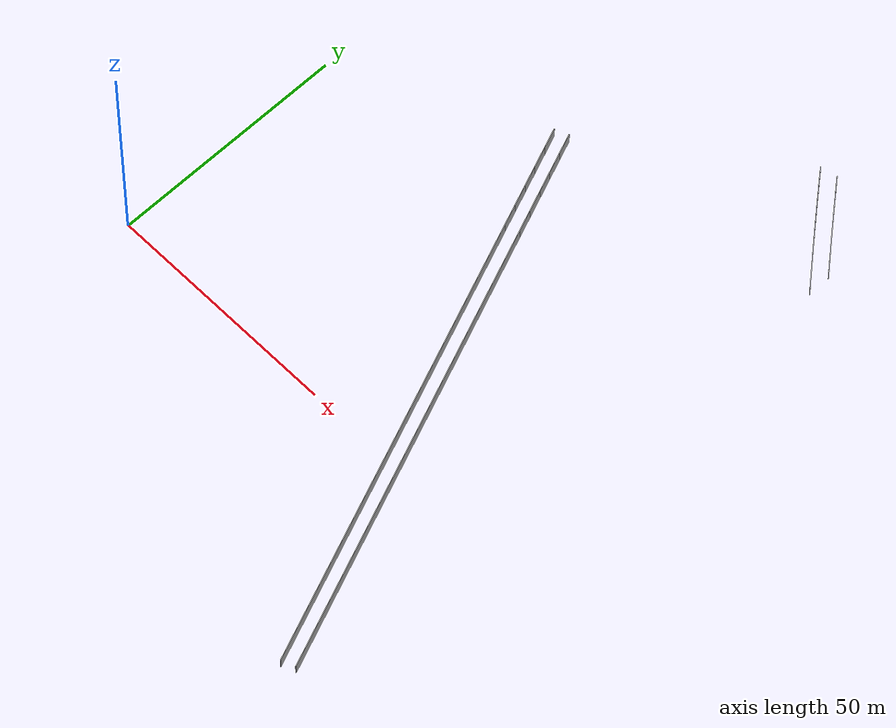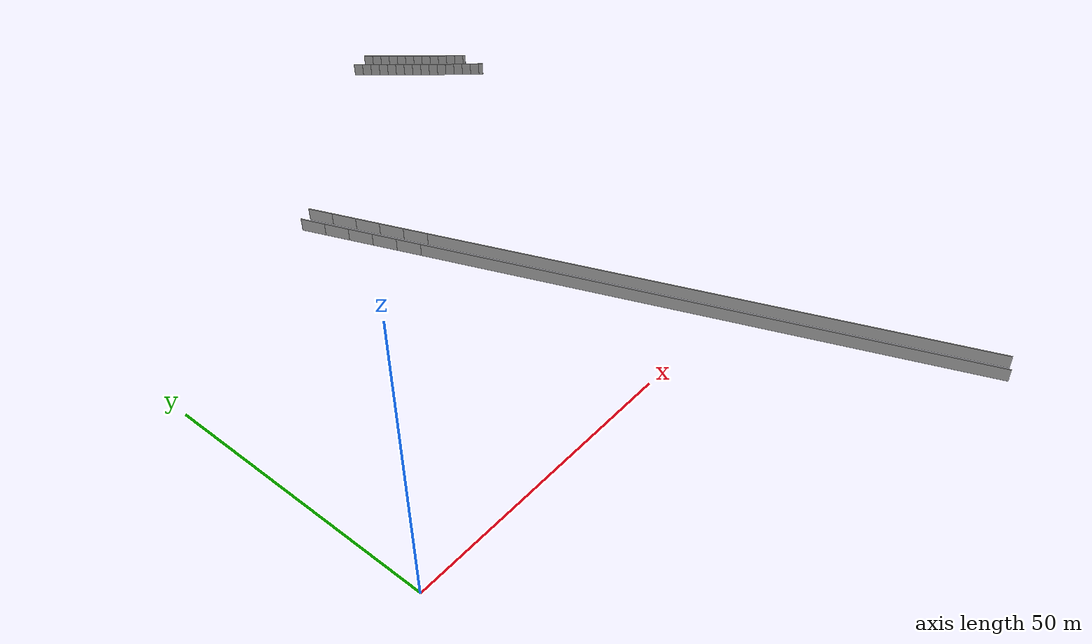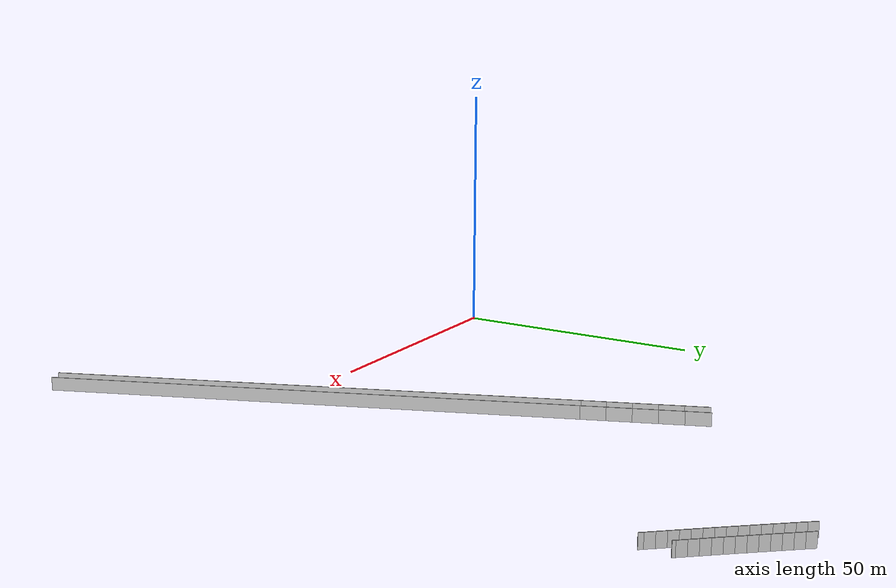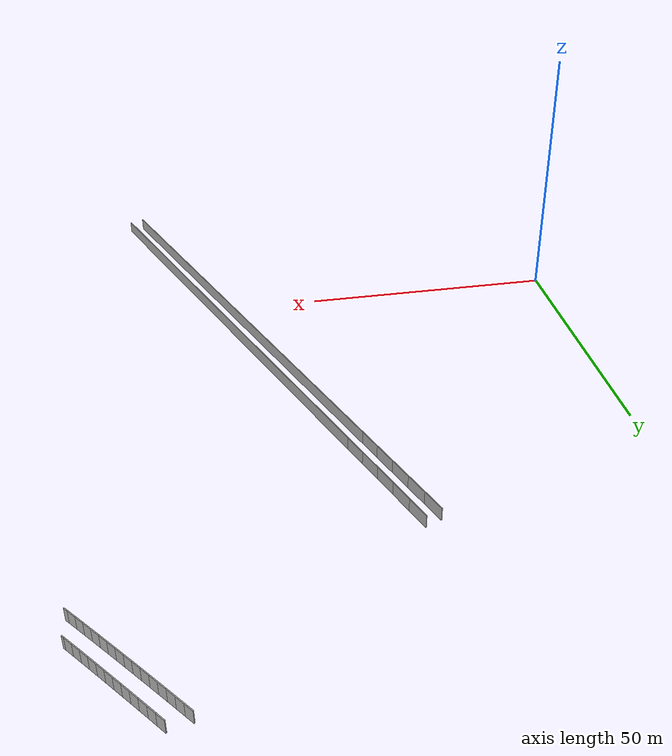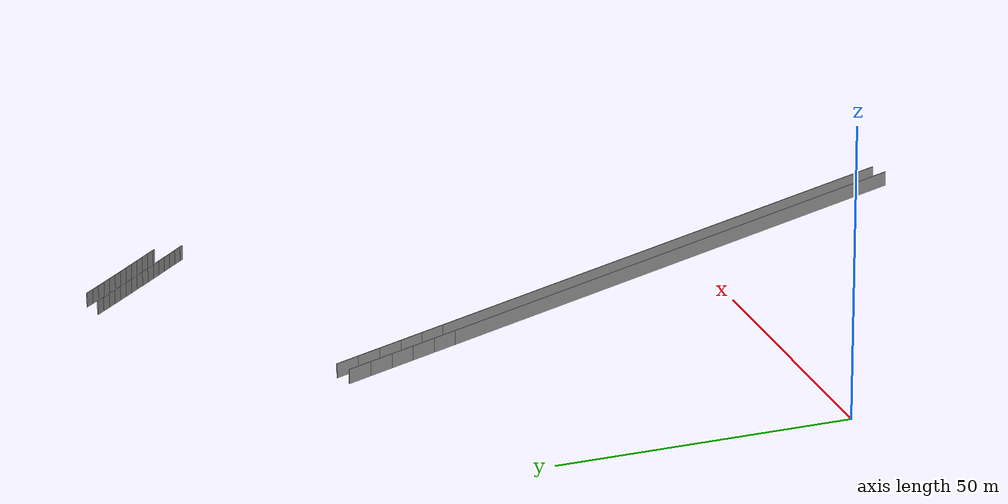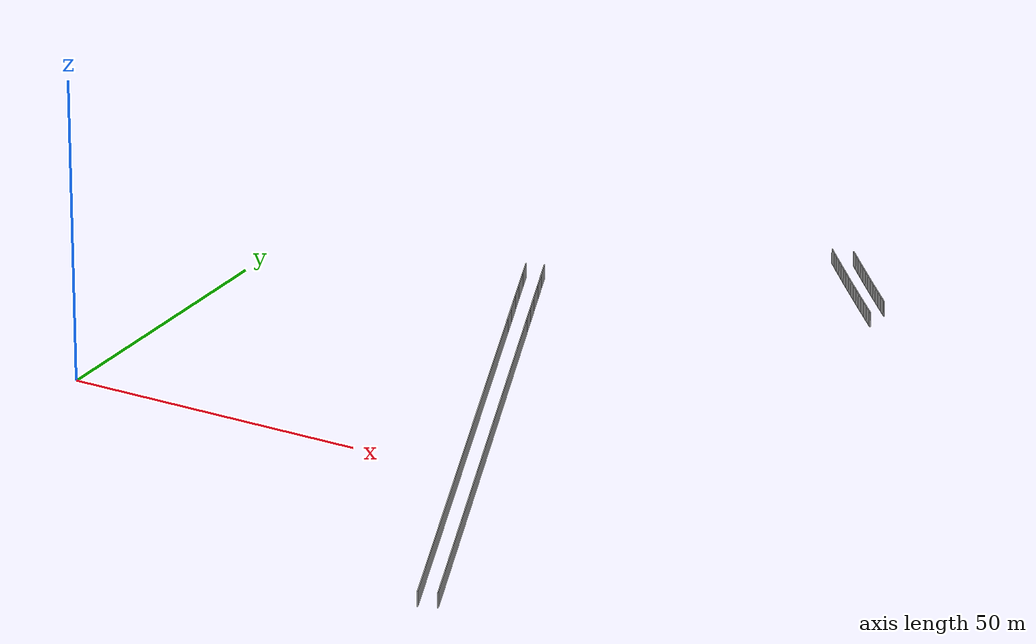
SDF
<?xml version="1.0" ?>
<sdf version="1.6">
  <model name="sps_2411">
    <pose frame="">0 0 0 0 -0 0</pose>
    <static>1</static>
    <self_collide>0</self_collide>
    <allow_auto_disable>0</allow_auto_disable>
    <link name="Wall3544">
      <kinematic>0</kinematic>
      <gravity>1</gravity>
      <self_collide>0</self_collide>
      <collision name="collision">
        <geometry>
          <box>
            <size>4.5267 0.15 2.5</size>
          </box>
        </geometry>
        <pose frame="">0 0 0 0 -0 0</pose>
      </collision>
      <visual name="visual">
        <geometry>
          <box>
            <size>4.5267 0.15 2.5</size>
          </box>
        </geometry>
        <pose frame="">0 0 0 0 -0 0</pose>
        <cast_shadows>1</cast_shadows>
        <transparency>0.0</transparency>
      </visual>
      <pose frame="">41.5051 67.7543 1.25 0 0 -1.18643</pose>
    </link>
    <link name="Wall3545">
      <kinematic>0</kinematic>
      <gravity>1</gravity>
      <self_collide>0</self_collide>
      <collision name="collision">
        <geometry>
          <box>
            <size>4.52766 0.15 2.5</size>
          </box>
        </geometry>
        <pose frame="">0 0 0 0 -0 0</pose>
      </collision>
      <visual name="visual">
        <geometry>
          <box>
            <size>4.52766 0.15 2.5</size>
          </box>
        </geometry>
        <pose frame="">0 0 0 0 -0 0</pose>
        <cast_shadows>1</cast_shadows>
        <transparency>0.0</transparency>
      </visual>
      <pose frame="">43.2028 63.5575 1.25 0 0 -1.18637</pose>
    </link>
    <link name="Wall4740">
      <kinematic>0</kinematic>
      <gravity>1</gravity>
      <self_collide>0</self_collide>
      <collision name="collision">
        <geometry>
          <box>
            <size>4.52663 0.15 2.5</size>
          </box>
        </geometry>
        <pose frame="">0 0 0 0 -0 0</pose>
      </collision>
      <visual name="visual">
        <geometry>
          <box>
            <size>4.52663 0.15 2.5</size>
          </box>
        </geometry>
        <pose frame="">0 0 0 0 -0 0</pose>
        <cast_shadows>1</cast_shadows>
        <transparency>0.0</transparency>
      </visual>
      <pose frame="">44.9004 59.3607 1.25 0 0 -1.18647</pose>
    </link>
    <link name="Wall4741">
      <kinematic>0</kinematic>
      <gravity>1</gravity>
      <self_collide>0</self_collide>
      <collision name="collision">
        <geometry>
          <box>
            <size>4.5268 0.15 2.5</size>
          </box>
        </geometry>
        <pose frame="">0 0 0 0 -0 0</pose>
      </collision>
      <visual name="visual">
        <geometry>
          <box>
            <size>4.5268 0.15 2.5</size>
          </box>
        </geometry>
        <pose frame="">0 0 0 0 -0 0</pose>
        <cast_shadows>1</cast_shadows>
        <transparency>0.0</transparency>
      </visual>
      <pose frame="">46.5976 55.1642 1.25 0 0 -1.18648</pose>
    </link>
    <link name="Wall4742">
      <kinematic>0</kinematic>
      <gravity>1</gravity>
      <self_collide>0</self_collide>
      <collision name="collision">
        <geometry>
          <box>
            <size>4.52577 0.15 2.5</size>
          </box>
        </geometry>
        <pose frame="">0 0 0 0 -0 0</pose>
      </collision>
      <visual name="visual">
        <geometry>
          <box>
            <size>4.52577 0.15 2.5</size>
          </box>
        </geometry>
        <pose frame="">0 0 0 0 -0 0</pose>
        <cast_shadows>1</cast_shadows>
        <transparency>0.0</transparency>
      </visual>
      <pose frame="">48.2948 50.9681 1.25 0 0 -1.18643</pose>
    </link>
    <link name="Wall4743">
      <kinematic>0</kinematic>
      <gravity>1</gravity>
      <self_collide>0</self_collide>
      <collision name="collision">
        <geometry>
          <box>
            <size>98.5488 0.15 2.5</size>
          </box>
        </geometry>
        <pose frame="">0 0 0 0 -0 0</pose>
      </collision>
      <visual name="visual">
        <geometry>
          <box>
            <size>98.5488 0.15 2.5</size>
          </box>
        </geometry>
        <pose frame="">0 0 0 0 -0 0</pose>
        <cast_shadows>1</cast_shadows>
        <transparency>0.0</transparency>
      </visual>
      <pose frame="">67.6174 3.1902 1.25 0 0 -1.18648</pose>
    </link>
    <link name="Wall6477">
      <kinematic>0</kinematic>
      <gravity>1</gravity>
      <self_collide>0</self_collide>
      <collision name="collision">
        <geometry>
          <box>
            <size>4.5268 0.15 2.5</size>
          </box>
        </geometry>
        <pose frame="">0 0 0 0 -0 0</pose>
      </collision>
      <visual name="visual">
        <geometry>
          <box>
            <size>4.5268 0.15 2.5</size>
          </box>
        </geometry>
        <pose frame="">0 0 0 0 -0 0</pose>
        <cast_shadows>1</cast_shadows>
        <transparency>0.0</transparency>
      </visual>
      <pose frame="">47.6816 60.4856 1.25 0 0 -1.18648</pose>
    </link>
    <link name="Wall6478">
      <kinematic>0</kinematic>
      <gravity>1</gravity>
      <self_collide>0</self_collide>
      <collision name="collision">
        <geometry>
          <box>
            <size>4.5268 0.15 2.5</size>
          </box>
        </geometry>
        <pose frame="">0 0 0 0 -0 0</pose>
      </collision>
      <visual name="visual">
        <geometry>
          <box>
            <size>4.5268 0.15 2.5</size>
          </box>
        </geometry>
        <pose frame="">0 0 0 0 -0 0</pose>
        <cast_shadows>1</cast_shadows>
        <transparency>0.0</transparency>
      </visual>
      <pose frame="">49.3788 56.289 1.25 0 0 -1.18648</pose>
    </link>
    <link name="Wall6479">
      <kinematic>0</kinematic>
      <gravity>1</gravity>
      <self_collide>0</self_collide>
      <collision name="collision">
        <geometry>
          <box>
            <size>4.526 0.15 2.5</size>
          </box>
        </geometry>
        <pose frame="">0 0 0 0 -0 0</pose>
      </collision>
      <visual name="visual">
        <geometry>
          <box>
            <size>4.526 0.15 2.5</size>
          </box>
        </geometry>
        <pose frame="">0 0 0 0 -0 0</pose>
        <cast_shadows>1</cast_shadows>
        <transparency>0.0</transparency>
      </visual>
      <pose frame="">51.0757 52.0927 1.25 0 0 -1.18656</pose>
    </link>
    <link name="Wall6480">
      <kinematic>0</kinematic>
      <gravity>1</gravity>
      <self_collide>0</self_collide>
      <collision name="collision">
        <geometry>
          <box>
            <size>98.5486 0.15 2.5</size>
          </box>
        </geometry>
        <pose frame="">0 0 0 0 -0 0</pose>
      </collision>
      <visual name="visual">
        <geometry>
          <box>
            <size>98.5486 0.15 2.5</size>
          </box>
        </geometry>
        <pose frame="">0 0 0 0 -0 0</pose>
        <cast_shadows>1</cast_shadows>
        <transparency>0.0</transparency>
      </visual>
      <pose frame="">70.3985 4.3148 1.25 0 0 -1.18647</pose>
    </link>
    <link name="Wall6612">
      <kinematic>0</kinematic>
      <gravity>1</gravity>
      <self_collide>0</self_collide>
      <collision name="collision">
        <geometry>
          <box>
            <size>1.68608 0.15 2.5</size>
          </box>
        </geometry>
        <pose frame="">0 0 0 0 -0 0</pose>
      </collision>
      <visual name="visual">
        <geometry>
          <box>
            <size>1.68608 0.15 2.5</size>
          </box>
        </geometry>
        <pose frame="">0 0 0 0 -0 0</pose>
        <cast_shadows>1</cast_shadows>
        <transparency>0.0</transparency>
      </visual>
      <pose frame="">81.2801 98.8005 1.25 0 0 -0.878218</pose>
    </link>
    <link name="Wall6613">
      <kinematic>0</kinematic>
      <gravity>1</gravity>
      <self_collide>0</self_collide>
      <collision name="collision">
        <geometry>
          <box>
            <size>1.68623 0.15 2.5</size>
          </box>
        </geometry>
        <pose frame="">0 0 0 0 -0 0</pose>
      </collision>
      <visual name="visual">
        <geometry>
          <box>
            <size>1.68623 0.15 2.5</size>
          </box>
        </geometry>
        <pose frame="">0 0 0 0 -0 0</pose>
        <cast_shadows>1</cast_shadows>
        <transparency>0.0</transparency>
      </visual>
      <pose frame="">82.358 97.5038 1.25 0 0 -0.87641</pose>
    </link>
    <link name="Wall6614">
      <kinematic>0</kinematic>
      <gravity>1</gravity>
      <self_collide>0</self_collide>
      <collision name="collision">
        <geometry>
          <box>
            <size>1.68624 0.15 2.5</size>
          </box>
        </geometry>
        <pose frame="">0 0 0 0 -0 0</pose>
      </collision>
      <visual name="visual">
        <geometry>
          <box>
            <size>1.68624 0.15 2.5</size>
          </box>
        </geometry>
        <pose frame="">0 0 0 0 -0 0</pose>
        <cast_shadows>1</cast_shadows>
        <transparency>0.0</transparency>
      </visual>
      <pose frame="">83.4381 96.2089 1.25 0 0 -0.874765</pose>
    </link>
    <link name="Wall6615">
      <kinematic>0</kinematic>
      <gravity>1</gravity>
      <self_collide>0</self_collide>
      <collision name="collision">
        <geometry>
          <box>
            <size>1.68629 0.15 2.5</size>
          </box>
        </geometry>
        <pose frame="">0 0 0 0 -0 0</pose>
      </collision>
      <visual name="visual">
        <geometry>
          <box>
            <size>1.68629 0.15 2.5</size>
          </box>
        </geometry>
        <pose frame="">0 0 0 0 -0 0</pose>
        <cast_shadows>1</cast_shadows>
        <transparency>0.0</transparency>
      </visual>
      <pose frame="">84.5203 94.9158 1.25 0 0 -0.873092</pose>
    </link>
    <link name="Wall6616">
      <kinematic>0</kinematic>
      <gravity>1</gravity>
      <self_collide>0</self_collide>
      <collision name="collision">
        <geometry>
          <box>
            <size>1.68629 0.15 2.5</size>
          </box>
        </geometry>
        <pose frame="">0 0 0 0 -0 0</pose>
      </collision>
      <visual name="visual">
        <geometry>
          <box>
            <size>1.68629 0.15 2.5</size>
          </box>
        </geometry>
        <pose frame="">0 0 0 0 -0 0</pose>
        <cast_shadows>1</cast_shadows>
        <transparency>0.0</transparency>
      </visual>
      <pose frame="">85.6049 93.6245 1.25 0 0 -0.871345</pose>
    </link>
    <link name="Wall6617">
      <kinematic>0</kinematic>
      <gravity>1</gravity>
      <self_collide>0</self_collide>
      <collision name="collision">
        <geometry>
          <box>
            <size>1.68622 0.15 2.5</size>
          </box>
        </geometry>
        <pose frame="">0 0 0 0 -0 0</pose>
      </collision>
      <visual name="visual">
        <geometry>
          <box>
            <size>1.68622 0.15 2.5</size>
          </box>
        </geometry>
        <pose frame="">0 0 0 0 -0 0</pose>
        <cast_shadows>1</cast_shadows>
        <transparency>0.0</transparency>
      </visual>
      <pose frame="">86.6916 92.3351 1.25 0 0 -0.869653</pose>
    </link>
    <link name="Wall6618">
      <kinematic>0</kinematic>
      <gravity>1</gravity>
      <self_collide>0</self_collide>
      <collision name="collision">
        <geometry>
          <box>
            <size>1.6863 0.15 2.5</size>
          </box>
        </geometry>
        <pose frame="">0 0 0 0 -0 0</pose>
      </collision>
      <visual name="visual">
        <geometry>
          <box>
            <size>1.6863 0.15 2.5</size>
          </box>
        </geometry>
        <pose frame="">0 0 0 0 -0 0</pose>
        <cast_shadows>1</cast_shadows>
        <transparency>0.0</transparency>
      </visual>
      <pose frame="">87.7804 91.0475 1.25 0 0 -0.868082</pose>
    </link>
    <link name="Wall6619">
      <kinematic>0</kinematic>
      <gravity>1</gravity>
      <self_collide>0</self_collide>
      <collision name="collision">
        <geometry>
          <box>
            <size>1.68615 0.15 2.5</size>
          </box>
        </geometry>
        <pose frame="">0 0 0 0 -0 0</pose>
      </collision>
      <visual name="visual">
        <geometry>
          <box>
            <size>1.68615 0.15 2.5</size>
          </box>
        </geometry>
        <pose frame="">0 0 0 0 -0 0</pose>
        <cast_shadows>1</cast_shadows>
        <transparency>0.0</transparency>
      </visual>
      <pose frame="">88.8713 89.7617 1.25 0 0 -0.866344</pose>
    </link>
    <link name="Wall6620">
      <kinematic>0</kinematic>
      <gravity>1</gravity>
      <self_collide>0</self_collide>
      <collision name="collision">
        <geometry>
          <box>
            <size>1.68592 0.15 2.5</size>
          </box>
        </geometry>
        <pose frame="">0 0 0 0 -0 0</pose>
      </collision>
      <visual name="visual">
        <geometry>
          <box>
            <size>1.68592 0.15 2.5</size>
          </box>
        </geometry>
        <pose frame="">0 0 0 0 -0 0</pose>
        <cast_shadows>1</cast_shadows>
        <transparency>0.0</transparency>
      </visual>
      <pose frame="">89.9643 88.4779 1.25 0 0 -0.86466</pose>
    </link>
    <link name="Wall6621">
      <kinematic>0</kinematic>
      <gravity>1</gravity>
      <self_collide>0</self_collide>
      <collision name="collision">
        <geometry>
          <box>
            <size>1.68626 0.15 2.5</size>
          </box>
        </geometry>
        <pose frame="">0 0 0 0 -0 0</pose>
      </collision>
      <visual name="visual">
        <geometry>
          <box>
            <size>1.68626 0.15 2.5</size>
          </box>
        </geometry>
        <pose frame="">0 0 0 0 -0 0</pose>
        <cast_shadows>1</cast_shadows>
        <transparency>0.0</transparency>
      </visual>
      <pose frame="">91.0594 87.1959 1.25 0 0 -0.862975</pose>
    </link>
    <link name="Wall6622">
      <kinematic>0</kinematic>
      <gravity>1</gravity>
      <self_collide>0</self_collide>
      <collision name="collision">
        <geometry>
          <box>
            <size>1.68613 0.15 2.5</size>
          </box>
        </geometry>
        <pose frame="">0 0 0 0 -0 0</pose>
      </collision>
      <visual name="visual">
        <geometry>
          <box>
            <size>1.68613 0.15 2.5</size>
          </box>
        </geometry>
        <pose frame="">0 0 0 0 -0 0</pose>
        <cast_shadows>1</cast_shadows>
        <transparency>0.0</transparency>
      </visual>
      <pose frame="">92.1569 85.9157 1.25 0 0 -0.861287</pose>
    </link>
    <link name="Wall6623">
      <kinematic>0</kinematic>
      <gravity>1</gravity>
      <self_collide>0</self_collide>
      <collision name="collision">
        <geometry>
          <box>
            <size>1.68614 0.15 2.5</size>
          </box>
        </geometry>
        <pose frame="">0 0 0 0 -0 0</pose>
      </collision>
      <visual name="visual">
        <geometry>
          <box>
            <size>1.68614 0.15 2.5</size>
          </box>
        </geometry>
        <pose frame="">0 0 0 0 -0 0</pose>
        <cast_shadows>1</cast_shadows>
        <transparency>0.0</transparency>
      </visual>
      <pose frame="">93.2564 84.6374 1.25 0 0 -0.859618</pose>
    </link>
    <link name="Wall6624">
      <kinematic>0</kinematic>
      <gravity>1</gravity>
      <self_collide>0</self_collide>
      <collision name="collision">
        <geometry>
          <box>
            <size>1.68632 0.15 2.5</size>
          </box>
        </geometry>
        <pose frame="">0 0 0 0 -0 0</pose>
      </collision>
      <visual name="visual">
        <geometry>
          <box>
            <size>1.68632 0.15 2.5</size>
          </box>
        </geometry>
        <pose frame="">0 0 0 0 -0 0</pose>
        <cast_shadows>1</cast_shadows>
        <transparency>0.0</transparency>
      </visual>
      <pose frame="">94.3581 83.3608 1.25 0 0 -0.857993</pose>
    </link>
    <link name="Wall6625">
      <kinematic>0</kinematic>
      <gravity>1</gravity>
      <self_collide>0</self_collide>
      <collision name="collision">
        <geometry>
          <box>
            <size>1.68629 0.15 2.5</size>
          </box>
        </geometry>
        <pose frame="">0 0 0 0 -0 0</pose>
      </collision>
      <visual name="visual">
        <geometry>
          <box>
            <size>1.68629 0.15 2.5</size>
          </box>
        </geometry>
        <pose frame="">0 0 0 0 -0 0</pose>
        <cast_shadows>1</cast_shadows>
        <transparency>0.0</transparency>
      </visual>
      <pose frame="">95.4619 82.086 1.25 0 0 -0.85625</pose>
    </link>
    <link name="Wall6626">
      <kinematic>0</kinematic>
      <gravity>1</gravity>
      <self_collide>0</self_collide>
      <collision name="collision">
        <geometry>
          <box>
            <size>1.68607 0.15 2.5</size>
          </box>
        </geometry>
        <pose frame="">0 0 0 0 -0 0</pose>
      </collision>
      <visual name="visual">
        <geometry>
          <box>
            <size>1.68607 0.15 2.5</size>
          </box>
        </geometry>
        <pose frame="">0 0 0 0 -0 0</pose>
        <cast_shadows>1</cast_shadows>
        <transparency>0.0</transparency>
      </visual>
      <pose frame="">96.5682 80.8135 1.25 0 0 -0.854078</pose>
    </link>
    <link name="Wall6627">
      <kinematic>0</kinematic>
      <gravity>1</gravity>
      <self_collide>0</self_collide>
      <collision name="collision">
        <geometry>
          <box>
            <size>0.835422 0.15 2.5</size>
          </box>
        </geometry>
        <pose frame="">0 0 0 0 -0 0</pose>
      </collision>
      <visual name="visual">
        <geometry>
          <box>
            <size>0.835422 0.15 2.5</size>
          </box>
        </geometry>
        <pose frame="">0 0 0 0 -0 0</pose>
        <cast_shadows>1</cast_shadows>
        <transparency>0.0</transparency>
      </visual>
      <pose frame="">97.3968 79.8633 1.25 0 0 -0.85276</pose>
    </link>
    <link name="Wall9194">
      <kinematic>0</kinematic>
      <gravity>1</gravity>
      <self_collide>0</self_collide>
      <collision name="collision">
        <geometry>
          <box>
            <size>4.52653 0.15 2.5</size>
          </box>
        </geometry>
        <pose frame="">0 0 0 0 -0 0</pose>
      </collision>
      <visual name="visual">
        <geometry>
          <box>
            <size>4.52653 0.15 2.5</size>
          </box>
        </geometry>
        <pose frame="">0 0 0 0 -0 0</pose>
        <cast_shadows>1</cast_shadows>
        <transparency>0.0</transparency>
      </visual>
      <pose frame="">44.2863 68.8792 1.25 0 0 -1.18641</pose>
    </link>
    <link name="Wall9195">
      <kinematic>0</kinematic>
      <gravity>1</gravity>
      <self_collide>0</self_collide>
      <collision name="collision">
        <geometry>
          <box>
            <size>4.52766 0.15 2.5</size>
          </box>
        </geometry>
        <pose frame="">0 0 0 0 -0 0</pose>
      </collision>
      <visual name="visual">
        <geometry>
          <box>
            <size>4.52766 0.15 2.5</size>
          </box>
        </geometry>
        <pose frame="">0 0 0 0 -0 0</pose>
        <cast_shadows>1</cast_shadows>
        <transparency>0.0</transparency>
      </visual>
      <pose frame="">45.984 64.6825 1.25 0 0 -1.18637</pose>
    </link>
    <link name="Wall9196">
      <kinematic>0</kinematic>
      <gravity>1</gravity>
      <self_collide>0</self_collide>
      <collision name="collision">
        <geometry>
          <box>
            <size>0.523454 0.15 2.5</size>
          </box>
        </geometry>
        <pose frame="">0 0 0 0 -0 0</pose>
      </collision>
      <visual name="visual">
        <geometry>
          <box>
            <size>0.523454 0.15 2.5</size>
          </box>
        </geometry>
        <pose frame="">0 0 0 0 -0 0</pose>
        <cast_shadows>1</cast_shadows>
        <transparency>0.0</transparency>
      </visual>
      <pose frame="">97.5001 84.6202 1.25 0 -0 2.28539</pose>
    </link>
    <link name="Wall9197">
      <kinematic>0</kinematic>
      <gravity>1</gravity>
      <self_collide>0</self_collide>
      <collision name="collision">
        <geometry>
          <box>
            <size>1.68081 0.15 2.5</size>
          </box>
        </geometry>
        <pose frame="">0 0 0 0 -0 0</pose>
      </collision>
      <visual name="visual">
        <geometry>
          <box>
            <size>1.68081 0.15 2.5</size>
          </box>
        </geometry>
        <pose frame="">0 0 0 0 -0 0</pose>
        <cast_shadows>1</cast_shadows>
        <transparency>0.0</transparency>
      </visual>
      <pose frame="">96.779 85.4536 1.25 0 -0 2.28375</pose>
    </link>
    <link name="Wall9198">
      <kinematic>0</kinematic>
      <gravity>1</gravity>
      <self_collide>0</self_collide>
      <collision name="collision">
        <geometry>
          <box>
            <size>1.68089 0.15 2.5</size>
          </box>
        </geometry>
        <pose frame="">0 0 0 0 -0 0</pose>
      </collision>
      <visual name="visual">
        <geometry>
          <box>
            <size>1.68089 0.15 2.5</size>
          </box>
        </geometry>
        <pose frame="">0 0 0 0 -0 0</pose>
        <cast_shadows>1</cast_shadows>
        <transparency>0.0</transparency>
      </visual>
      <pose frame="">95.6807 86.726 1.25 0 -0 2.28203</pose>
    </link>
    <link name="Wall9199">
      <kinematic>0</kinematic>
      <gravity>1</gravity>
      <self_collide>0</self_collide>
      <collision name="collision">
        <geometry>
          <box>
            <size>1.68081 0.15 2.5</size>
          </box>
        </geometry>
        <pose frame="">0 0 0 0 -0 0</pose>
      </collision>
      <visual name="visual">
        <geometry>
          <box>
            <size>1.68081 0.15 2.5</size>
          </box>
        </geometry>
        <pose frame="">0 0 0 0 -0 0</pose>
        <cast_shadows>1</cast_shadows>
        <transparency>0.0</transparency>
      </visual>
      <pose frame="">94.5846 88.0003 1.25 0 -0 2.2803</pose>
    </link>
    <link name="Wall9200">
      <kinematic>0</kinematic>
      <gravity>1</gravity>
      <self_collide>0</self_collide>
      <collision name="collision">
        <geometry>
          <box>
            <size>1.68076 0.15 2.5</size>
          </box>
        </geometry>
        <pose frame="">0 0 0 0 -0 0</pose>
      </collision>
      <visual name="visual">
        <geometry>
          <box>
            <size>1.68076 0.15 2.5</size>
          </box>
        </geometry>
        <pose frame="">0 0 0 0 -0 0</pose>
        <cast_shadows>1</cast_shadows>
        <transparency>0.0</transparency>
      </visual>
      <pose frame="">93.4907 89.2764 1.25 0 -0 2.27865</pose>
    </link>
    <link name="Wall9201">
      <kinematic>0</kinematic>
      <gravity>1</gravity>
      <self_collide>0</self_collide>
      <collision name="collision">
        <geometry>
          <box>
            <size>1.68087 0.15 2.5</size>
          </box>
        </geometry>
        <pose frame="">0 0 0 0 -0 0</pose>
      </collision>
      <visual name="visual">
        <geometry>
          <box>
            <size>1.68087 0.15 2.5</size>
          </box>
        </geometry>
        <pose frame="">0 0 0 0 -0 0</pose>
        <cast_shadows>1</cast_shadows>
        <transparency>0.0</transparency>
      </visual>
      <pose frame="">92.3989 90.5544 1.25 0 -0 2.27682</pose>
    </link>
    <link name="Wall9202">
      <kinematic>0</kinematic>
      <gravity>1</gravity>
      <self_collide>0</self_collide>
      <collision name="collision">
        <geometry>
          <box>
            <size>1.68077 0.15 2.5</size>
          </box>
        </geometry>
        <pose frame="">0 0 0 0 -0 0</pose>
      </collision>
      <visual name="visual">
        <geometry>
          <box>
            <size>1.68077 0.15 2.5</size>
          </box>
        </geometry>
        <pose frame="">0 0 0 0 -0 0</pose>
        <cast_shadows>1</cast_shadows>
        <transparency>0.0</transparency>
      </visual>
      <pose frame="">91.3093 91.8342 1.25 0 -0 2.27535</pose>
    </link>
    <link name="Wall9203">
      <kinematic>0</kinematic>
      <gravity>1</gravity>
      <self_collide>0</self_collide>
      <collision name="collision">
        <geometry>
          <box>
            <size>1.68084 0.15 2.5</size>
          </box>
        </geometry>
        <pose frame="">0 0 0 0 -0 0</pose>
      </collision>
      <visual name="visual">
        <geometry>
          <box>
            <size>1.68084 0.15 2.5</size>
          </box>
        </geometry>
        <pose frame="">0 0 0 0 -0 0</pose>
        <cast_shadows>1</cast_shadows>
        <transparency>0.0</transparency>
      </visual>
      <pose frame="">90.2219 93.1158 1.25 0 -0 2.27355</pose>
    </link>
    <link name="Wall9204">
      <kinematic>0</kinematic>
      <gravity>1</gravity>
      <self_collide>0</self_collide>
      <collision name="collision">
        <geometry>
          <box>
            <size>1.68056 0.15 2.5</size>
          </box>
        </geometry>
        <pose frame="">0 0 0 0 -0 0</pose>
      </collision>
      <visual name="visual">
        <geometry>
          <box>
            <size>1.68056 0.15 2.5</size>
          </box>
        </geometry>
        <pose frame="">0 0 0 0 -0 0</pose>
        <cast_shadows>1</cast_shadows>
        <transparency>0.0</transparency>
      </visual>
      <pose frame="">89.1366 94.3992 1.25 0 -0 2.27189</pose>
    </link>
    <link name="Wall9205">
      <kinematic>0</kinematic>
      <gravity>1</gravity>
      <self_collide>0</self_collide>
      <collision name="collision">
        <geometry>
          <box>
            <size>1.68076 0.15 2.5</size>
          </box>
        </geometry>
        <pose frame="">0 0 0 0 -0 0</pose>
      </collision>
      <visual name="visual">
        <geometry>
          <box>
            <size>1.68076 0.15 2.5</size>
          </box>
        </geometry>
        <pose frame="">0 0 0 0 -0 0</pose>
        <cast_shadows>1</cast_shadows>
        <transparency>0.0</transparency>
      </visual>
      <pose frame="">88.0536 95.6844 1.25 0 -0 2.27017</pose>
    </link>
    <link name="Wall9206">
      <kinematic>0</kinematic>
      <gravity>1</gravity>
      <self_collide>0</self_collide>
      <collision name="collision">
        <geometry>
          <box>
            <size>1.68105 0.15 2.5</size>
          </box>
        </geometry>
        <pose frame="">0 0 0 0 -0 0</pose>
      </collision>
      <visual name="visual">
        <geometry>
          <box>
            <size>1.68105 0.15 2.5</size>
          </box>
        </geometry>
        <pose frame="">0 0 0 0 -0 0</pose>
        <cast_shadows>1</cast_shadows>
        <transparency>0.0</transparency>
      </visual>
      <pose frame="">86.9726 96.9716 1.25 0 -0 2.26851</pose>
    </link>
    <link name="Wall9207">
      <kinematic>0</kinematic>
      <gravity>1</gravity>
      <self_collide>0</self_collide>
      <collision name="collision">
        <geometry>
          <box>
            <size>1.6807 0.15 2.5</size>
          </box>
        </geometry>
        <pose frame="">0 0 0 0 -0 0</pose>
      </collision>
      <visual name="visual">
        <geometry>
          <box>
            <size>1.6807 0.15 2.5</size>
          </box>
        </geometry>
        <pose frame="">0 0 0 0 -0 0</pose>
        <cast_shadows>1</cast_shadows>
        <transparency>0.0</transparency>
      </visual>
      <pose frame="">85.8939 98.2606 1.25 0 -0 2.26679</pose>
    </link>
    <link name="Wall9208">
      <kinematic>0</kinematic>
      <gravity>1</gravity>
      <self_collide>0</self_collide>
      <collision name="collision">
        <geometry>
          <box>
            <size>1.68085 0.15 2.5</size>
          </box>
        </geometry>
        <pose frame="">0 0 0 0 -0 0</pose>
      </collision>
      <visual name="visual">
        <geometry>
          <box>
            <size>1.68085 0.15 2.5</size>
          </box>
        </geometry>
        <pose frame="">0 0 0 0 -0 0</pose>
        <cast_shadows>1</cast_shadows>
        <transparency>0.0</transparency>
      </visual>
      <pose frame="">84.8173 99.5513 1.25 0 -0 2.2652</pose>
    </link>
  </model>
</sdf>
